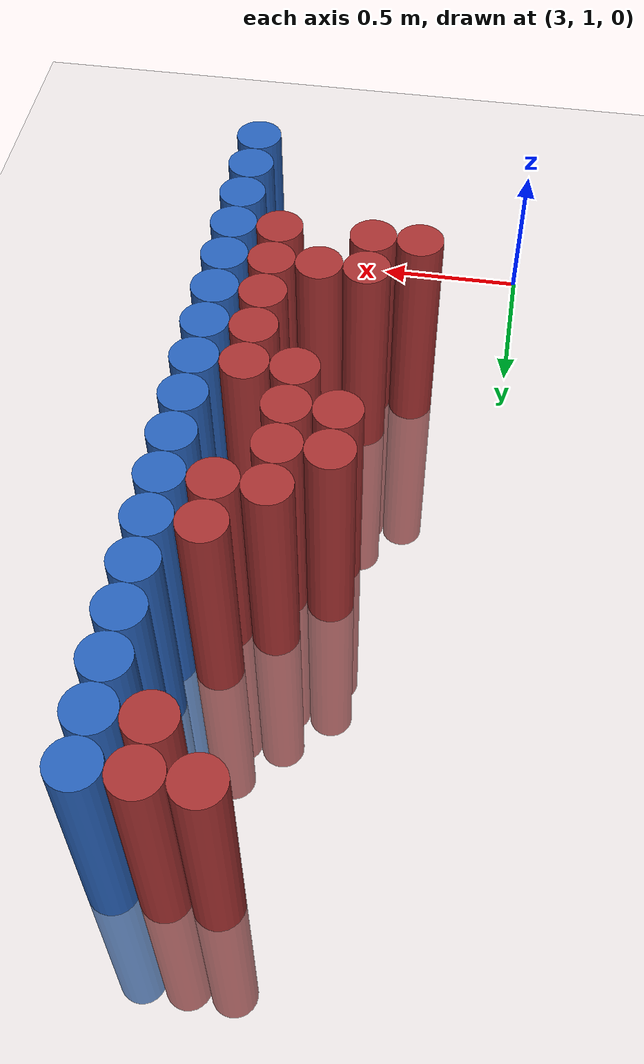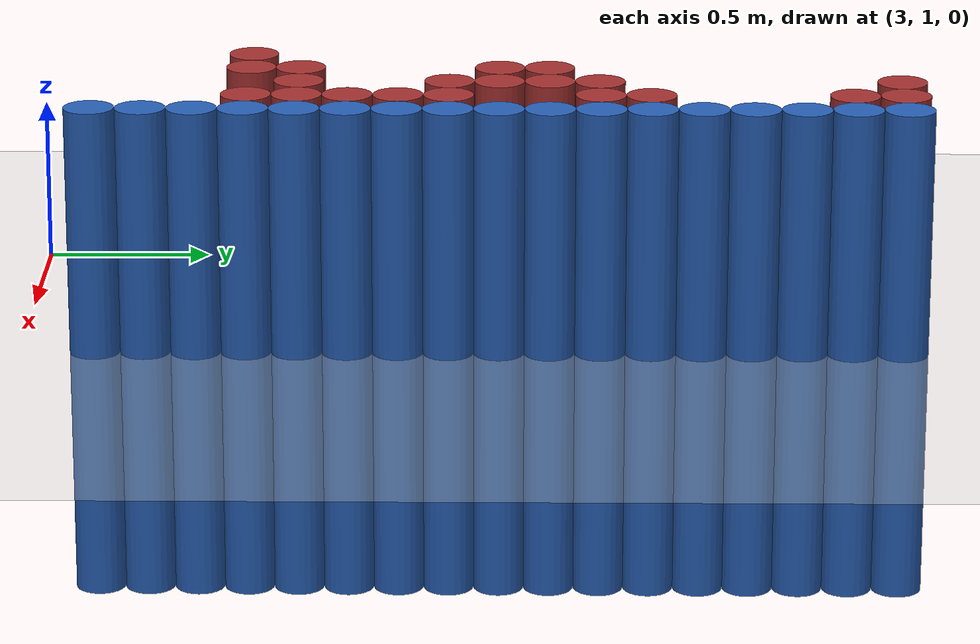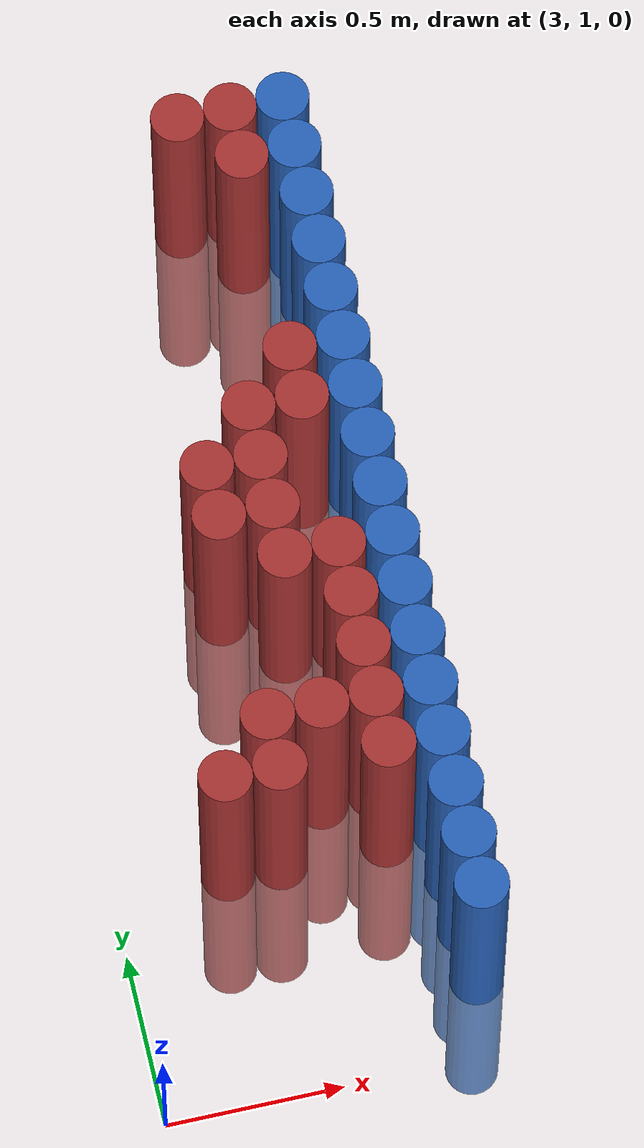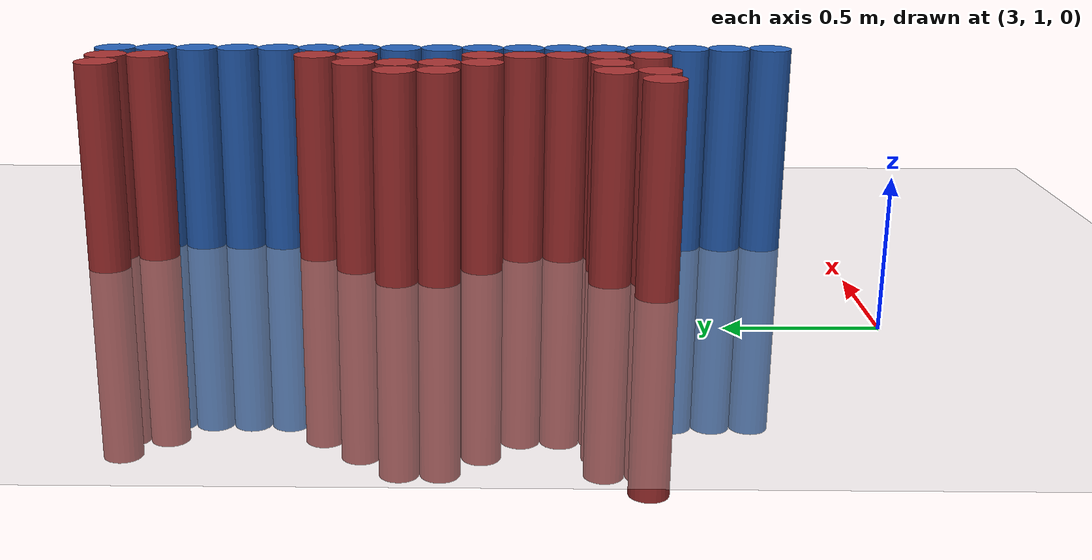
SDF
<sdf version="1.6">
 <world name="default">
  <model name="ground_plane">
   <static>1</static>
   <link name="link">
    <collision name="collision">
     <geometry><plane><normal>0 0 1</normal><size>100 100</size></plane></geometry>
     <surface><friction><ode><mu>100</mu><mu2>50</mu2></ode></friction></surface>
    </collision>
    <visual name="visual">
     <cast_shadows>0</cast_shadows>
     <geometry><plane><normal>0 0 1</normal><size>100 100</size></plane></geometry>
     <material>
      <script><uri>file://media/materials/scripts/gazebo.material</uri><name>Gazebo/Grey</name></script>
     </material>
    </visual>
   </link>
  </model>
  <model name="unit_cylinder_132">
   <static>1</static>
   <pose>3.925000 1.375000 0.000000 0.000000 0.000000 0.000000</pose>
   <link name="link">
    <inertial>
     <mass>1</mass>
     <inertia><ixx>0.145833</ixx><ixy>0</ixy><ixz>0</ixz><iyy>0.145833</iyy><iyz>0</iyz><izz>0.125</izz></inertia>
    </inertial>
    <collision name="collision">
     <geometry><cylinder><radius>0.075000</radius><length>1.5</length></cylinder></geometry>
    </collision>
    <visual name="visual">
     <geometry><cylinder><radius>0.075000</radius><length>1.5</length></cylinder></geometry>
     <material>
      <ambient>0.152000 0.379000 0.720000 1</ambient>
      <diffuse>0.152000 0.379000 0.720000 1</diffuse>
     </material>
     <material>
      <script><name>Gazebo/Grey</name><uri>file://media/materials/scripts/gazebo.material</uri></script>
     </material>
    </visual>
   </link>
  </model>
  <model name="unit_cylinder_134">
   <static>1</static>
   <pose>3.925000 1.525000 0.000000 0.000000 0.000000 0.000000</pose>
   <link name="link">
    <inertial>
     <mass>1</mass>
     <inertia><ixx>0.145833</ixx><ixy>0</ixy><ixz>0</ixz><iyy>0.145833</iyy><iyz>0</iyz><izz>0.125</izz></inertia>
    </inertial>
    <collision name="collision">
     <geometry><cylinder><radius>0.075000</radius><length>1.5</length></cylinder></geometry>
    </collision>
    <visual name="visual">
     <geometry><cylinder><radius>0.075000</radius><length>1.5</length></cylinder></geometry>
     <material>
      <ambient>0.152000 0.379000 0.720000 1</ambient>
      <diffuse>0.152000 0.379000 0.720000 1</diffuse>
     </material>
     <material>
      <script><name>Gazebo/Grey</name><uri>file://media/materials/scripts/gazebo.material</uri></script>
     </material>
    </visual>
   </link>
  </model>
  <model name="unit_cylinder_136">
   <static>1</static>
   <pose>3.925000 1.675000 0.000000 0.000000 0.000000 0.000000</pose>
   <link name="link">
    <inertial>
     <mass>1</mass>
     <inertia><ixx>0.145833</ixx><ixy>0</ixy><ixz>0</ixz><iyy>0.145833</iyy><iyz>0</iyz><izz>0.125</izz></inertia>
    </inertial>
    <collision name="collision">
     <geometry><cylinder><radius>0.075000</radius><length>1.5</length></cylinder></geometry>
    </collision>
    <visual name="visual">
     <geometry><cylinder><radius>0.075000</radius><length>1.5</length></cylinder></geometry>
     <material>
      <ambient>0.152000 0.379000 0.720000 1</ambient>
      <diffuse>0.152000 0.379000 0.720000 1</diffuse>
     </material>
     <material>
      <script><name>Gazebo/Grey</name><uri>file://media/materials/scripts/gazebo.material</uri></script>
     </material>
    </visual>
   </link>
  </model>
  <model name="unit_cylinder_138">
   <static>1</static>
   <pose>3.925000 1.825000 0.000000 0.000000 0.000000 0.000000</pose>
   <link name="link">
    <inertial>
     <mass>1</mass>
     <inertia><ixx>0.145833</ixx><ixy>0</ixy><ixz>0</ixz><iyy>0.145833</iyy><iyz>0</iyz><izz>0.125</izz></inertia>
    </inertial>
    <collision name="collision">
     <geometry><cylinder><radius>0.075000</radius><length>1.5</length></cylinder></geometry>
    </collision>
    <visual name="visual">
     <geometry><cylinder><radius>0.075000</radius><length>1.5</length></cylinder></geometry>
     <material>
      <ambient>0.152000 0.379000 0.720000 1</ambient>
      <diffuse>0.152000 0.379000 0.720000 1</diffuse>
     </material>
     <material>
      <script><name>Gazebo/Grey</name><uri>file://media/materials/scripts/gazebo.material</uri></script>
     </material>
    </visual>
   </link>
  </model>
  <model name="unit_cylinder_140">
   <static>1</static>
   <pose>3.925000 1.975000 0.000000 0.000000 0.000000 0.000000</pose>
   <link name="link">
    <inertial>
     <mass>1</mass>
     <inertia><ixx>0.145833</ixx><ixy>0</ixy><ixz>0</ixz><iyy>0.145833</iyy><iyz>0</iyz><izz>0.125</izz></inertia>
    </inertial>
    <collision name="collision">
     <geometry><cylinder><radius>0.075000</radius><length>1.5</length></cylinder></geometry>
    </collision>
    <visual name="visual">
     <geometry><cylinder><radius>0.075000</radius><length>1.5</length></cylinder></geometry>
     <material>
      <ambient>0.152000 0.379000 0.720000 1</ambient>
      <diffuse>0.152000 0.379000 0.720000 1</diffuse>
     </material>
     <material>
      <script><name>Gazebo/Grey</name><uri>file://media/materials/scripts/gazebo.material</uri></script>
     </material>
    </visual>
   </link>
  </model>
  <model name="unit_cylinder_142">
   <static>1</static>
   <pose>3.925000 2.125000 0.000000 0.000000 0.000000 0.000000</pose>
   <link name="link">
    <inertial>
     <mass>1</mass>
     <inertia><ixx>0.145833</ixx><ixy>0</ixy><ixz>0</ixz><iyy>0.145833</iyy><iyz>0</iyz><izz>0.125</izz></inertia>
    </inertial>
    <collision name="collision">
     <geometry><cylinder><radius>0.075000</radius><length>1.5</length></cylinder></geometry>
    </collision>
    <visual name="visual">
     <geometry><cylinder><radius>0.075000</radius><length>1.5</length></cylinder></geometry>
     <material>
      <ambient>0.152000 0.379000 0.720000 1</ambient>
      <diffuse>0.152000 0.379000 0.720000 1</diffuse>
     </material>
     <material>
      <script><name>Gazebo/Grey</name><uri>file://media/materials/scripts/gazebo.material</uri></script>
     </material>
    </visual>
   </link>
  </model>
  <model name="unit_cylinder_144">
   <static>1</static>
   <pose>3.925000 2.275000 0.000000 0.000000 0.000000 0.000000</pose>
   <link name="link">
    <inertial>
     <mass>1</mass>
     <inertia><ixx>0.145833</ixx><ixy>0</ixy><ixz>0</ixz><iyy>0.145833</iyy><iyz>0</iyz><izz>0.125</izz></inertia>
    </inertial>
    <collision name="collision">
     <geometry><cylinder><radius>0.075000</radius><length>1.5</length></cylinder></geometry>
    </collision>
    <visual name="visual">
     <geometry><cylinder><radius>0.075000</radius><length>1.5</length></cylinder></geometry>
     <material>
      <ambient>0.152000 0.379000 0.720000 1</ambient>
      <diffuse>0.152000 0.379000 0.720000 1</diffuse>
     </material>
     <material>
      <script><name>Gazebo/Grey</name><uri>file://media/materials/scripts/gazebo.material</uri></script>
     </material>
    </visual>
   </link>
  </model>
  <model name="unit_cylinder_146">
   <static>1</static>
   <pose>3.925000 2.425000 0.000000 0.000000 0.000000 0.000000</pose>
   <link name="link">
    <inertial>
     <mass>1</mass>
     <inertia><ixx>0.145833</ixx><ixy>0</ixy><ixz>0</ixz><iyy>0.145833</iyy><iyz>0</iyz><izz>0.125</izz></inertia>
    </inertial>
    <collision name="collision">
     <geometry><cylinder><radius>0.075000</radius><length>1.5</length></cylinder></geometry>
    </collision>
    <visual name="visual">
     <geometry><cylinder><radius>0.075000</radius><length>1.5</length></cylinder></geometry>
     <material>
      <ambient>0.152000 0.379000 0.720000 1</ambient>
      <diffuse>0.152000 0.379000 0.720000 1</diffuse>
     </material>
     <material>
      <script><name>Gazebo/Grey</name><uri>file://media/materials/scripts/gazebo.material</uri></script>
     </material>
    </visual>
   </link>
  </model>
  <model name="unit_cylinder_148">
   <static>1</static>
   <pose>3.925000 2.575000 0.000000 0.000000 0.000000 0.000000</pose>
   <link name="link">
    <inertial>
     <mass>1</mass>
     <inertia><ixx>0.145833</ixx><ixy>0</ixy><ixz>0</ixz><iyy>0.145833</iyy><iyz>0</iyz><izz>0.125</izz></inertia>
    </inertial>
    <collision name="collision">
     <geometry><cylinder><radius>0.075000</radius><length>1.5</length></cylinder></geometry>
    </collision>
    <visual name="visual">
     <geometry><cylinder><radius>0.075000</radius><length>1.5</length></cylinder></geometry>
     <material>
      <ambient>0.152000 0.379000 0.720000 1</ambient>
      <diffuse>0.152000 0.379000 0.720000 1</diffuse>
     </material>
     <material>
      <script><name>Gazebo/Grey</name><uri>file://media/materials/scripts/gazebo.material</uri></script>
     </material>
    </visual>
   </link>
  </model>
  <model name="unit_cylinder_150">
   <static>1</static>
   <pose>3.925000 2.725000 0.000000 0.000000 0.000000 0.000000</pose>
   <link name="link">
    <inertial>
     <mass>1</mass>
     <inertia><ixx>0.145833</ixx><ixy>0</ixy><ixz>0</ixz><iyy>0.145833</iyy><iyz>0</iyz><izz>0.125</izz></inertia>
    </inertial>
    <collision name="collision">
     <geometry><cylinder><radius>0.075000</radius><length>1.5</length></cylinder></geometry>
    </collision>
    <visual name="visual">
     <geometry><cylinder><radius>0.075000</radius><length>1.5</length></cylinder></geometry>
     <material>
      <ambient>0.152000 0.379000 0.720000 1</ambient>
      <diffuse>0.152000 0.379000 0.720000 1</diffuse>
     </material>
     <material>
      <script><name>Gazebo/Grey</name><uri>file://media/materials/scripts/gazebo.material</uri></script>
     </material>
    </visual>
   </link>
  </model>
  <model name="unit_cylinder_152">
   <static>1</static>
   <pose>3.925000 2.875000 0.000000 0.000000 0.000000 0.000000</pose>
   <link name="link">
    <inertial>
     <mass>1</mass>
     <inertia><ixx>0.145833</ixx><ixy>0</ixy><ixz>0</ixz><iyy>0.145833</iyy><iyz>0</iyz><izz>0.125</izz></inertia>
    </inertial>
    <collision name="collision">
     <geometry><cylinder><radius>0.075000</radius><length>1.5</length></cylinder></geometry>
    </collision>
    <visual name="visual">
     <geometry><cylinder><radius>0.075000</radius><length>1.5</length></cylinder></geometry>
     <material>
      <ambient>0.152000 0.379000 0.720000 1</ambient>
      <diffuse>0.152000 0.379000 0.720000 1</diffuse>
     </material>
     <material>
      <script><name>Gazebo/Grey</name><uri>file://media/materials/scripts/gazebo.material</uri></script>
     </material>
    </visual>
   </link>
  </model>
  <model name="unit_cylinder_154">
   <static>1</static>
   <pose>3.925000 3.025000 0.000000 0.000000 0.000000 0.000000</pose>
   <link name="link">
    <inertial>
     <mass>1</mass>
     <inertia><ixx>0.145833</ixx><ixy>0</ixy><ixz>0</ixz><iyy>0.145833</iyy><iyz>0</iyz><izz>0.125</izz></inertia>
    </inertial>
    <collision name="collision">
     <geometry><cylinder><radius>0.075000</radius><length>1.5</length></cylinder></geometry>
    </collision>
    <visual name="visual">
     <geometry><cylinder><radius>0.075000</radius><length>1.5</length></cylinder></geometry>
     <material>
      <ambient>0.152000 0.379000 0.720000 1</ambient>
      <diffuse>0.152000 0.379000 0.720000 1</diffuse>
     </material>
     <material>
      <script><name>Gazebo/Grey</name><uri>file://media/materials/scripts/gazebo.material</uri></script>
     </material>
    </visual>
   </link>
  </model>
  <model name="unit_cylinder_156">
   <static>1</static>
   <pose>3.925000 3.175000 0.000000 0.000000 0.000000 0.000000</pose>
   <link name="link">
    <inertial>
     <mass>1</mass>
     <inertia><ixx>0.145833</ixx><ixy>0</ixy><ixz>0</ixz><iyy>0.145833</iyy><iyz>0</iyz><izz>0.125</izz></inertia>
    </inertial>
    <collision name="collision">
     <geometry><cylinder><radius>0.075000</radius><length>1.5</length></cylinder></geometry>
    </collision>
    <visual name="visual">
     <geometry><cylinder><radius>0.075000</radius><length>1.5</length></cylinder></geometry>
     <material>
      <ambient>0.152000 0.379000 0.720000 1</ambient>
      <diffuse>0.152000 0.379000 0.720000 1</diffuse>
     </material>
     <material>
      <script><name>Gazebo/Grey</name><uri>file://media/materials/scripts/gazebo.material</uri></script>
     </material>
    </visual>
   </link>
  </model>
  <model name="unit_cylinder_158">
   <static>1</static>
   <pose>3.925000 3.325000 0.000000 0.000000 0.000000 0.000000</pose>
   <link name="link">
    <inertial>
     <mass>1</mass>
     <inertia><ixx>0.145833</ixx><ixy>0</ixy><ixz>0</ixz><iyy>0.145833</iyy><iyz>0</iyz><izz>0.125</izz></inertia>
    </inertial>
    <collision name="collision">
     <geometry><cylinder><radius>0.075000</radius><length>1.5</length></cylinder></geometry>
    </collision>
    <visual name="visual">
     <geometry><cylinder><radius>0.075000</radius><length>1.5</length></cylinder></geometry>
     <material>
      <ambient>0.152000 0.379000 0.720000 1</ambient>
      <diffuse>0.152000 0.379000 0.720000 1</diffuse>
     </material>
     <material>
      <script><name>Gazebo/Grey</name><uri>file://media/materials/scripts/gazebo.material</uri></script>
     </material>
    </visual>
   </link>
  </model>
  <model name="unit_cylinder_160">
   <static>1</static>
   <pose>3.925000 3.475000 0.000000 0.000000 0.000000 0.000000</pose>
   <link name="link">
    <inertial>
     <mass>1</mass>
     <inertia><ixx>0.145833</ixx><ixy>0</ixy><ixz>0</ixz><iyy>0.145833</iyy><iyz>0</iyz><izz>0.125</izz></inertia>
    </inertial>
    <collision name="collision">
     <geometry><cylinder><radius>0.075000</radius><length>1.5</length></cylinder></geometry>
    </collision>
    <visual name="visual">
     <geometry><cylinder><radius>0.075000</radius><length>1.5</length></cylinder></geometry>
     <material>
      <ambient>0.152000 0.379000 0.720000 1</ambient>
      <diffuse>0.152000 0.379000 0.720000 1</diffuse>
     </material>
     <material>
      <script><name>Gazebo/Grey</name><uri>file://media/materials/scripts/gazebo.material</uri></script>
     </material>
    </visual>
   </link>
  </model>
  <model name="unit_cylinder_162">
   <static>1</static>
   <pose>3.925000 3.625000 0.000000 0.000000 0.000000 0.000000</pose>
   <link name="link">
    <inertial>
     <mass>1</mass>
     <inertia><ixx>0.145833</ixx><ixy>0</ixy><ixz>0</ixz><iyy>0.145833</iyy><iyz>0</iyz><izz>0.125</izz></inertia>
    </inertial>
    <collision name="collision">
     <geometry><cylinder><radius>0.075000</radius><length>1.5</length></cylinder></geometry>
    </collision>
    <visual name="visual">
     <geometry><cylinder><radius>0.075000</radius><length>1.5</length></cylinder></geometry>
     <material>
      <ambient>0.152000 0.379000 0.720000 1</ambient>
      <diffuse>0.152000 0.379000 0.720000 1</diffuse>
     </material>
     <material>
      <script><name>Gazebo/Grey</name><uri>file://media/materials/scripts/gazebo.material</uri></script>
     </material>
    </visual>
   </link>
  </model>
  <model name="unit_cylinder_428">
   <static>1</static>
   <pose>3.325000 1.675000 0.000000 0.000000 0.000000 0.000000</pose>
   <link name="link">
    <inertial>
     <mass>1</mass>
     <inertia><ixx>0.145833</ixx><ixy>0</ixy><ixz>0</ixz><iyy>0.145833</iyy><iyz>0</iyz><izz>0.125</izz></inertia>
    </inertial>
    <collision name="collision">
     <geometry><cylinder><radius>0.075000</radius><length>1.5</length></cylinder></geometry>
    </collision>
    <visual name="visual">
     <geometry><cylinder><radius>0.075000</radius><length>1.5</length></cylinder></geometry>
     <material>
      <ambient>0.648000 0.192000 0.192000 1</ambient>
      <diffuse>0.648000 0.192000 0.192000 1</diffuse>
     </material>
     <material>
      <script><name>Gazebo/Grey</name><uri>file://media/materials/scripts/gazebo.material</uri></script>
     </material>
    </visual>
   </link>
  </model>
  <model name="unit_cylinder_433">
   <static>1</static>
   <pose>3.475000 1.675000 0.000000 0.000000 0.000000 0.000000</pose>
   <link name="link">
    <inertial>
     <mass>1</mass>
     <inertia><ixx>0.145833</ixx><ixy>0</ixy><ixz>0</ixz><iyy>0.145833</iyy><iyz>0</iyz><izz>0.125</izz></inertia>
    </inertial>
    <collision name="collision">
     <geometry><cylinder><radius>0.075000</radius><length>1.5</length></cylinder></geometry>
    </collision>
    <visual name="visual">
     <geometry><cylinder><radius>0.075000</radius><length>1.5</length></cylinder></geometry>
     <material>
      <ambient>0.648000 0.192000 0.192000 1</ambient>
      <diffuse>0.648000 0.192000 0.192000 1</diffuse>
     </material>
     <material>
      <script><name>Gazebo/Grey</name><uri>file://media/materials/scripts/gazebo.material</uri></script>
     </material>
    </visual>
   </link>
  </model>
  <model name="unit_cylinder_434">
   <static>1</static>
   <pose>3.475000 1.825000 0.000000 0.000000 0.000000 0.000000</pose>
   <link name="link">
    <inertial>
     <mass>1</mass>
     <inertia><ixx>0.145833</ixx><ixy>0</ixy><ixz>0</ixz><iyy>0.145833</iyy><iyz>0</iyz><izz>0.125</izz></inertia>
    </inertial>
    <collision name="collision">
     <geometry><cylinder><radius>0.075000</radius><length>1.5</length></cylinder></geometry>
    </collision>
    <visual name="visual">
     <geometry><cylinder><radius>0.075000</radius><length>1.5</length></cylinder></geometry>
     <material>
      <ambient>0.648000 0.192000 0.192000 1</ambient>
      <diffuse>0.648000 0.192000 0.192000 1</diffuse>
     </material>
     <material>
      <script><name>Gazebo/Grey</name><uri>file://media/materials/scripts/gazebo.material</uri></script>
     </material>
    </visual>
   </link>
  </model>
  <model name="unit_cylinder_435">
   <static>1</static>
   <pose>3.475000 2.425000 0.000000 0.000000 0.000000 0.000000</pose>
   <link name="link">
    <inertial>
     <mass>1</mass>
     <inertia><ixx>0.145833</ixx><ixy>0</ixy><ixz>0</ixz><iyy>0.145833</iyy><iyz>0</iyz><izz>0.125</izz></inertia>
    </inertial>
    <collision name="collision">
     <geometry><cylinder><radius>0.075000</radius><length>1.5</length></cylinder></geometry>
    </collision>
    <visual name="visual">
     <geometry><cylinder><radius>0.075000</radius><length>1.5</length></cylinder></geometry>
     <material>
      <ambient>0.648000 0.192000 0.192000 1</ambient>
      <diffuse>0.648000 0.192000 0.192000 1</diffuse>
     </material>
     <material>
      <script><name>Gazebo/Grey</name><uri>file://media/materials/scripts/gazebo.material</uri></script>
     </material>
    </visual>
   </link>
  </model>
  <model name="unit_cylinder_436">
   <static>1</static>
   <pose>3.475000 2.575000 0.000000 0.000000 0.000000 0.000000</pose>
   <link name="link">
    <inertial>
     <mass>1</mass>
     <inertia><ixx>0.145833</ixx><ixy>0</ixy><ixz>0</ixz><iyy>0.145833</iyy><iyz>0</iyz><izz>0.125</izz></inertia>
    </inertial>
    <collision name="collision">
     <geometry><cylinder><radius>0.075000</radius><length>1.5</length></cylinder></geometry>
    </collision>
    <visual name="visual">
     <geometry><cylinder><radius>0.075000</radius><length>1.5</length></cylinder></geometry>
     <material>
      <ambient>0.648000 0.192000 0.192000 1</ambient>
      <diffuse>0.648000 0.192000 0.192000 1</diffuse>
     </material>
     <material>
      <script><name>Gazebo/Grey</name><uri>file://media/materials/scripts/gazebo.material</uri></script>
     </material>
    </visual>
   </link>
  </model>
  <model name="unit_cylinder_440">
   <static>1</static>
   <pose>3.625000 1.825000 0.000000 0.000000 0.000000 0.000000</pose>
   <link name="link">
    <inertial>
     <mass>1</mass>
     <inertia><ixx>0.145833</ixx><ixy>0</ixy><ixz>0</ixz><iyy>0.145833</iyy><iyz>0</iyz><izz>0.125</izz></inertia>
    </inertial>
    <collision name="collision">
     <geometry><cylinder><radius>0.075000</radius><length>1.5</length></cylinder></geometry>
    </collision>
    <visual name="visual">
     <geometry><cylinder><radius>0.075000</radius><length>1.5</length></cylinder></geometry>
     <material>
      <ambient>0.648000 0.192000 0.192000 1</ambient>
      <diffuse>0.648000 0.192000 0.192000 1</diffuse>
     </material>
     <material>
      <script><name>Gazebo/Grey</name><uri>file://media/materials/scripts/gazebo.material</uri></script>
     </material>
    </visual>
   </link>
  </model>
  <model name="unit_cylinder_441">
   <static>1</static>
   <pose>3.625000 2.275000 0.000000 0.000000 0.000000 0.000000</pose>
   <link name="link">
    <inertial>
     <mass>1</mass>
     <inertia><ixx>0.145833</ixx><ixy>0</ixy><ixz>0</ixz><iyy>0.145833</iyy><iyz>0</iyz><izz>0.125</izz></inertia>
    </inertial>
    <collision name="collision">
     <geometry><cylinder><radius>0.075000</radius><length>1.5</length></cylinder></geometry>
    </collision>
    <visual name="visual">
     <geometry><cylinder><radius>0.075000</radius><length>1.5</length></cylinder></geometry>
     <material>
      <ambient>0.648000 0.192000 0.192000 1</ambient>
      <diffuse>0.648000 0.192000 0.192000 1</diffuse>
     </material>
     <material>
      <script><name>Gazebo/Grey</name><uri>file://media/materials/scripts/gazebo.material</uri></script>
     </material>
    </visual>
   </link>
  </model>
  <model name="unit_cylinder_442">
   <static>1</static>
   <pose>3.625000 2.425000 0.000000 0.000000 0.000000 0.000000</pose>
   <link name="link">
    <inertial>
     <mass>1</mass>
     <inertia><ixx>0.145833</ixx><ixy>0</ixy><ixz>0</ixz><iyy>0.145833</iyy><iyz>0</iyz><izz>0.125</izz></inertia>
    </inertial>
    <collision name="collision">
     <geometry><cylinder><radius>0.075000</radius><length>1.5</length></cylinder></geometry>
    </collision>
    <visual name="visual">
     <geometry><cylinder><radius>0.075000</radius><length>1.5</length></cylinder></geometry>
     <material>
      <ambient>0.648000 0.192000 0.192000 1</ambient>
      <diffuse>0.648000 0.192000 0.192000 1</diffuse>
     </material>
     <material>
      <script><name>Gazebo/Grey</name><uri>file://media/materials/scripts/gazebo.material</uri></script>
     </material>
    </visual>
   </link>
  </model>
  <model name="unit_cylinder_443">
   <static>1</static>
   <pose>3.625000 2.575000 0.000000 0.000000 0.000000 0.000000</pose>
   <link name="link">
    <inertial>
     <mass>1</mass>
     <inertia><ixx>0.145833</ixx><ixy>0</ixy><ixz>0</ixz><iyy>0.145833</iyy><iyz>0</iyz><izz>0.125</izz></inertia>
    </inertial>
    <collision name="collision">
     <geometry><cylinder><radius>0.075000</radius><length>1.5</length></cylinder></geometry>
    </collision>
    <visual name="visual">
     <geometry><cylinder><radius>0.075000</radius><length>1.5</length></cylinder></geometry>
     <material>
      <ambient>0.648000 0.192000 0.192000 1</ambient>
      <diffuse>0.648000 0.192000 0.192000 1</diffuse>
     </material>
     <material>
      <script><name>Gazebo/Grey</name><uri>file://media/materials/scripts/gazebo.material</uri></script>
     </material>
    </visual>
   </link>
  </model>
  <model name="unit_cylinder_444">
   <static>1</static>
   <pose>3.625000 2.725000 0.000000 0.000000 0.000000 0.000000</pose>
   <link name="link">
    <inertial>
     <mass>1</mass>
     <inertia><ixx>0.145833</ixx><ixy>0</ixy><ixz>0</ixz><iyy>0.145833</iyy><iyz>0</iyz><izz>0.125</izz></inertia>
    </inertial>
    <collision name="collision">
     <geometry><cylinder><radius>0.075000</radius><length>1.5</length></cylinder></geometry>
    </collision>
    <visual name="visual">
     <geometry><cylinder><radius>0.075000</radius><length>1.5</length></cylinder></geometry>
     <material>
      <ambient>0.648000 0.192000 0.192000 1</ambient>
      <diffuse>0.648000 0.192000 0.192000 1</diffuse>
     </material>
     <material>
      <script><name>Gazebo/Grey</name><uri>file://media/materials/scripts/gazebo.material</uri></script>
     </material>
    </visual>
   </link>
  </model>
  <model name="unit_cylinder_445">
   <static>1</static>
   <pose>3.625000 3.625000 0.000000 0.000000 0.000000 0.000000</pose>
   <link name="link">
    <inertial>
     <mass>1</mass>
     <inertia><ixx>0.145833</ixx><ixy>0</ixy><ixz>0</ixz><iyy>0.145833</iyy><iyz>0</iyz><izz>0.125</izz></inertia>
    </inertial>
    <collision name="collision">
     <geometry><cylinder><radius>0.075000</radius><length>1.5</length></cylinder></geometry>
    </collision>
    <visual name="visual">
     <geometry><cylinder><radius>0.075000</radius><length>1.5</length></cylinder></geometry>
     <material>
      <ambient>0.648000 0.192000 0.192000 1</ambient>
      <diffuse>0.648000 0.192000 0.192000 1</diffuse>
     </material>
     <material>
      <script><name>Gazebo/Grey</name><uri>file://media/materials/scripts/gazebo.material</uri></script>
     </material>
    </visual>
   </link>
  </model>
  <model name="unit_cylinder_457">
   <static>1</static>
   <pose>3.775000 1.675000 0.000000 0.000000 0.000000 0.000000</pose>
   <link name="link">
    <inertial>
     <mass>1</mass>
     <inertia><ixx>0.145833</ixx><ixy>0</ixy><ixz>0</ixz><iyy>0.145833</iyy><iyz>0</iyz><izz>0.125</izz></inertia>
    </inertial>
    <collision name="collision">
     <geometry><cylinder><radius>0.075000</radius><length>1.5</length></cylinder></geometry>
    </collision>
    <visual name="visual">
     <geometry><cylinder><radius>0.075000</radius><length>1.5</length></cylinder></geometry>
     <material>
      <ambient>0.648000 0.192000 0.192000 1</ambient>
      <diffuse>0.648000 0.192000 0.192000 1</diffuse>
     </material>
     <material>
      <script><name>Gazebo/Grey</name><uri>file://media/materials/scripts/gazebo.material</uri></script>
     </material>
    </visual>
   </link>
  </model>
  <model name="unit_cylinder_458">
   <static>1</static>
   <pose>3.775000 1.825000 0.000000 0.000000 0.000000 0.000000</pose>
   <link name="link">
    <inertial>
     <mass>1</mass>
     <inertia><ixx>0.145833</ixx><ixy>0</ixy><ixz>0</ixz><iyy>0.145833</iyy><iyz>0</iyz><izz>0.125</izz></inertia>
    </inertial>
    <collision name="collision">
     <geometry><cylinder><radius>0.075000</radius><length>1.5</length></cylinder></geometry>
    </collision>
    <visual name="visual">
     <geometry><cylinder><radius>0.075000</radius><length>1.5</length></cylinder></geometry>
     <material>
      <ambient>0.648000 0.192000 0.192000 1</ambient>
      <diffuse>0.648000 0.192000 0.192000 1</diffuse>
     </material>
     <material>
      <script><name>Gazebo/Grey</name><uri>file://media/materials/scripts/gazebo.material</uri></script>
     </material>
    </visual>
   </link>
  </model>
  <model name="unit_cylinder_459">
   <static>1</static>
   <pose>3.775000 1.975000 0.000000 0.000000 0.000000 0.000000</pose>
   <link name="link">
    <inertial>
     <mass>1</mass>
     <inertia><ixx>0.145833</ixx><ixy>0</ixy><ixz>0</ixz><iyy>0.145833</iyy><iyz>0</iyz><izz>0.125</izz></inertia>
    </inertial>
    <collision name="collision">
     <geometry><cylinder><radius>0.075000</radius><length>1.5</length></cylinder></geometry>
    </collision>
    <visual name="visual">
     <geometry><cylinder><radius>0.075000</radius><length>1.5</length></cylinder></geometry>
     <material>
      <ambient>0.648000 0.192000 0.192000 1</ambient>
      <diffuse>0.648000 0.192000 0.192000 1</diffuse>
     </material>
     <material>
      <script><name>Gazebo/Grey</name><uri>file://media/materials/scripts/gazebo.material</uri></script>
     </material>
    </visual>
   </link>
  </model>
  <model name="unit_cylinder_460">
   <static>1</static>
   <pose>3.775000 2.125000 0.000000 0.000000 0.000000 0.000000</pose>
   <link name="link">
    <inertial>
     <mass>1</mass>
     <inertia><ixx>0.145833</ixx><ixy>0</ixy><ixz>0</ixz><iyy>0.145833</iyy><iyz>0</iyz><izz>0.125</izz></inertia>
    </inertial>
    <collision name="collision">
     <geometry><cylinder><radius>0.075000</radius><length>1.5</length></cylinder></geometry>
    </collision>
    <visual name="visual">
     <geometry><cylinder><radius>0.075000</radius><length>1.5</length></cylinder></geometry>
     <material>
      <ambient>0.648000 0.192000 0.192000 1</ambient>
      <diffuse>0.648000 0.192000 0.192000 1</diffuse>
     </material>
     <material>
      <script><name>Gazebo/Grey</name><uri>file://media/materials/scripts/gazebo.material</uri></script>
     </material>
    </visual>
   </link>
  </model>
  <model name="unit_cylinder_461">
   <static>1</static>
   <pose>3.775000 2.275000 0.000000 0.000000 0.000000 0.000000</pose>
   <link name="link">
    <inertial>
     <mass>1</mass>
     <inertia><ixx>0.145833</ixx><ixy>0</ixy><ixz>0</ixz><iyy>0.145833</iyy><iyz>0</iyz><izz>0.125</izz></inertia>
    </inertial>
    <collision name="collision">
     <geometry><cylinder><radius>0.075000</radius><length>1.5</length></cylinder></geometry>
    </collision>
    <visual name="visual">
     <geometry><cylinder><radius>0.075000</radius><length>1.5</length></cylinder></geometry>
     <material>
      <ambient>0.648000 0.192000 0.192000 1</ambient>
      <diffuse>0.648000 0.192000 0.192000 1</diffuse>
     </material>
     <material>
      <script><name>Gazebo/Grey</name><uri>file://media/materials/scripts/gazebo.material</uri></script>
     </material>
    </visual>
   </link>
  </model>
  <model name="unit_cylinder_462">
   <static>1</static>
   <pose>3.775000 2.725000 0.000000 0.000000 0.000000 0.000000</pose>
   <link name="link">
    <inertial>
     <mass>1</mass>
     <inertia><ixx>0.145833</ixx><ixy>0</ixy><ixz>0</ixz><iyy>0.145833</iyy><iyz>0</iyz><izz>0.125</izz></inertia>
    </inertial>
    <collision name="collision">
     <geometry><cylinder><radius>0.075000</radius><length>1.5</length></cylinder></geometry>
    </collision>
    <visual name="visual">
     <geometry><cylinder><radius>0.075000</radius><length>1.5</length></cylinder></geometry>
     <material>
      <ambient>0.648000 0.192000 0.192000 1</ambient>
      <diffuse>0.648000 0.192000 0.192000 1</diffuse>
     </material>
     <material>
      <script><name>Gazebo/Grey</name><uri>file://media/materials/scripts/gazebo.material</uri></script>
     </material>
    </visual>
   </link>
  </model>
  <model name="unit_cylinder_463">
   <static>1</static>
   <pose>3.775000 2.875000 0.000000 0.000000 0.000000 0.000000</pose>
   <link name="link">
    <inertial>
     <mass>1</mass>
     <inertia><ixx>0.145833</ixx><ixy>0</ixy><ixz>0</ixz><iyy>0.145833</iyy><iyz>0</iyz><izz>0.125</izz></inertia>
    </inertial>
    <collision name="collision">
     <geometry><cylinder><radius>0.075000</radius><length>1.5</length></cylinder></geometry>
    </collision>
    <visual name="visual">
     <geometry><cylinder><radius>0.075000</radius><length>1.5</length></cylinder></geometry>
     <material>
      <ambient>0.648000 0.192000 0.192000 1</ambient>
      <diffuse>0.648000 0.192000 0.192000 1</diffuse>
     </material>
     <material>
      <script><name>Gazebo/Grey</name><uri>file://media/materials/scripts/gazebo.material</uri></script>
     </material>
    </visual>
   </link>
  </model>
  <model name="unit_cylinder_464">
   <static>1</static>
   <pose>3.775000 3.475000 0.000000 0.000000 0.000000 0.000000</pose>
   <link name="link">
    <inertial>
     <mass>1</mass>
     <inertia><ixx>0.145833</ixx><ixy>0</ixy><ixz>0</ixz><iyy>0.145833</iyy><iyz>0</iyz><izz>0.125</izz></inertia>
    </inertial>
    <collision name="collision">
     <geometry><cylinder><radius>0.075000</radius><length>1.5</length></cylinder></geometry>
    </collision>
    <visual name="visual">
     <geometry><cylinder><radius>0.075000</radius><length>1.5</length></cylinder></geometry>
     <material>
      <ambient>0.648000 0.192000 0.192000 1</ambient>
      <diffuse>0.648000 0.192000 0.192000 1</diffuse>
     </material>
     <material>
      <script><name>Gazebo/Grey</name><uri>file://media/materials/scripts/gazebo.material</uri></script>
     </material>
    </visual>
   </link>
  </model>
  <model name="unit_cylinder_465">
   <static>1</static>
   <pose>3.775000 3.625000 0.000000 0.000000 0.000000 0.000000</pose>
   <link name="link">
    <inertial>
     <mass>1</mass>
     <inertia><ixx>0.145833</ixx><ixy>0</ixy><ixz>0</ixz><iyy>0.145833</iyy><iyz>0</iyz><izz>0.125</izz></inertia>
    </inertial>
    <collision name="collision">
     <geometry><cylinder><radius>0.075000</radius><length>1.5</length></cylinder></geometry>
    </collision>
    <visual name="visual">
     <geometry><cylinder><radius>0.075000</radius><length>1.5</length></cylinder></geometry>
     <material>
      <ambient>0.648000 0.192000 0.192000 1</ambient>
      <diffuse>0.648000 0.192000 0.192000 1</diffuse>
     </material>
     <material>
      <script><name>Gazebo/Grey</name><uri>file://media/materials/scripts/gazebo.material</uri></script>
     </material>
    </visual>
   </link>
  </model>
  <model name="unit_cylinder_495">
   <static>1</static>
   <pose>3.925000 1.225000 0.000000 0.000000 0.000000 0.000000</pose>
   <link name="link">
    <inertial>
     <mass>1</mass>
     <inertia><ixx>0.145833</ixx><ixy>0</ixy><ixz>0</ixz><iyy>0.145833</iyy><iyz>0</iyz><izz>0.125</izz></inertia>
    </inertial>
    <collision name="collision">
     <geometry><cylinder><radius>0.075000</radius><length>1.5</length></cylinder></geometry>
    </collision>
    <visual name="visual">
     <geometry><cylinder><radius>0.075000</radius><length>1.5</length></cylinder></geometry>
     <material>
      <ambient>0.152000 0.379000 0.720000 1</ambient>
      <diffuse>0.152000 0.379000 0.720000 1</diffuse>
     </material>
     <material>
      <script><name>Gazebo/Grey</name><uri>file://media/materials/scripts/gazebo.material</uri></script>
     </material>
    </visual>
   </link>
  </model>
  <model name="unit_cylinder_496">
   <static>1</static>
   <pose>3.925000 1.375000 0.000000 0.000000 0.000000 0.000000</pose>
   <link name="link">
    <inertial>
     <mass>1</mass>
     <inertia><ixx>0.145833</ixx><ixy>0</ixy><ixz>0</ixz><iyy>0.145833</iyy><iyz>0</iyz><izz>0.125</izz></inertia>
    </inertial>
    <collision name="collision">
     <geometry><cylinder><radius>0.075000</radius><length>1.5</length></cylinder></geometry>
    </collision>
    <visual name="visual">
     <geometry><cylinder><radius>0.075000</radius><length>1.5</length></cylinder></geometry>
     <material>
      <ambient>0.152000 0.379000 0.720000 1</ambient>
      <diffuse>0.152000 0.379000 0.720000 1</diffuse>
     </material>
     <material>
      <script><name>Gazebo/Grey</name><uri>file://media/materials/scripts/gazebo.material</uri></script>
     </material>
    </visual>
   </link>
  </model>
  <model name="unit_cylinder_497">
   <static>1</static>
   <pose>3.925000 1.525000 0.000000 0.000000 0.000000 0.000000</pose>
   <link name="link">
    <inertial>
     <mass>1</mass>
     <inertia><ixx>0.145833</ixx><ixy>0</ixy><ixz>0</ixz><iyy>0.145833</iyy><iyz>0</iyz><izz>0.125</izz></inertia>
    </inertial>
    <collision name="collision">
     <geometry><cylinder><radius>0.075000</radius><length>1.5</length></cylinder></geometry>
    </collision>
    <visual name="visual">
     <geometry><cylinder><radius>0.075000</radius><length>1.5</length></cylinder></geometry>
     <material>
      <ambient>0.152000 0.379000 0.720000 1</ambient>
      <diffuse>0.152000 0.379000 0.720000 1</diffuse>
     </material>
     <material>
      <script><name>Gazebo/Grey</name><uri>file://media/materials/scripts/gazebo.material</uri></script>
     </material>
    </visual>
   </link>
  </model>
  <model name="unit_cylinder_498">
   <static>1</static>
   <pose>3.925000 1.675000 0.000000 0.000000 0.000000 0.000000</pose>
   <link name="link">
    <inertial>
     <mass>1</mass>
     <inertia><ixx>0.145833</ixx><ixy>0</ixy><ixz>0</ixz><iyy>0.145833</iyy><iyz>0</iyz><izz>0.125</izz></inertia>
    </inertial>
    <collision name="collision">
     <geometry><cylinder><radius>0.075000</radius><length>1.5</length></cylinder></geometry>
    </collision>
    <visual name="visual">
     <geometry><cylinder><radius>0.075000</radius><length>1.5</length></cylinder></geometry>
     <material>
      <ambient>0.152000 0.379000 0.720000 1</ambient>
      <diffuse>0.152000 0.379000 0.720000 1</diffuse>
     </material>
     <material>
      <script><name>Gazebo/Grey</name><uri>file://media/materials/scripts/gazebo.material</uri></script>
     </material>
    </visual>
   </link>
  </model>
  <model name="unit_cylinder_499">
   <static>1</static>
   <pose>3.925000 1.825000 0.000000 0.000000 0.000000 0.000000</pose>
   <link name="link">
    <inertial>
     <mass>1</mass>
     <inertia><ixx>0.145833</ixx><ixy>0</ixy><ixz>0</ixz><iyy>0.145833</iyy><iyz>0</iyz><izz>0.125</izz></inertia>
    </inertial>
    <collision name="collision">
     <geometry><cylinder><radius>0.075000</radius><length>1.5</length></cylinder></geometry>
    </collision>
    <visual name="visual">
     <geometry><cylinder><radius>0.075000</radius><length>1.5</length></cylinder></geometry>
     <material>
      <ambient>0.152000 0.379000 0.720000 1</ambient>
      <diffuse>0.152000 0.379000 0.720000 1</diffuse>
     </material>
     <material>
      <script><name>Gazebo/Grey</name><uri>file://media/materials/scripts/gazebo.material</uri></script>
     </material>
    </visual>
   </link>
  </model>
  <model name="unit_cylinder_500">
   <static>1</static>
   <pose>3.925000 1.975000 0.000000 0.000000 0.000000 0.000000</pose>
   <link name="link">
    <inertial>
     <mass>1</mass>
     <inertia><ixx>0.145833</ixx><ixy>0</ixy><ixz>0</ixz><iyy>0.145833</iyy><iyz>0</iyz><izz>0.125</izz></inertia>
    </inertial>
    <collision name="collision">
     <geometry><cylinder><radius>0.075000</radius><length>1.5</length></cylinder></geometry>
    </collision>
    <visual name="visual">
     <geometry><cylinder><radius>0.075000</radius><length>1.5</length></cylinder></geometry>
     <material>
      <ambient>0.152000 0.379000 0.720000 1</ambient>
      <diffuse>0.152000 0.379000 0.720000 1</diffuse>
     </material>
     <material>
      <script><name>Gazebo/Grey</name><uri>file://media/materials/scripts/gazebo.material</uri></script>
     </material>
    </visual>
   </link>
  </model>
  <model name="unit_cylinder_501">
   <static>1</static>
   <pose>3.925000 2.125000 0.000000 0.000000 0.000000 0.000000</pose>
   <link name="link">
    <inertial>
     <mass>1</mass>
     <inertia><ixx>0.145833</ixx><ixy>0</ixy><ixz>0</ixz><iyy>0.145833</iyy><iyz>0</iyz><izz>0.125</izz></inertia>
    </inertial>
    <collision name="collision">
     <geometry><cylinder><radius>0.075000</radius><length>1.5</length></cylinder></geometry>
    </collision>
    <visual name="visual">
     <geometry><cylinder><radius>0.075000</radius><length>1.5</length></cylinder></geometry>
     <material>
      <ambient>0.152000 0.379000 0.720000 1</ambient>
      <diffuse>0.152000 0.379000 0.720000 1</diffuse>
     </material>
     <material>
      <script><name>Gazebo/Grey</name><uri>file://media/materials/scripts/gazebo.material</uri></script>
     </material>
    </visual>
   </link>
  </model>
  <model name="unit_cylinder_502">
   <static>1</static>
   <pose>3.925000 2.275000 0.000000 0.000000 0.000000 0.000000</pose>
   <link name="link">
    <inertial>
     <mass>1</mass>
     <inertia><ixx>0.145833</ixx><ixy>0</ixy><ixz>0</ixz><iyy>0.145833</iyy><iyz>0</iyz><izz>0.125</izz></inertia>
    </inertial>
    <collision name="collision">
     <geometry><cylinder><radius>0.075000</radius><length>1.5</length></cylinder></geometry>
    </collision>
    <visual name="visual">
     <geometry><cylinder><radius>0.075000</radius><length>1.5</length></cylinder></geometry>
     <material>
      <ambient>0.152000 0.379000 0.720000 1</ambient>
      <diffuse>0.152000 0.379000 0.720000 1</diffuse>
     </material>
     <material>
      <script><name>Gazebo/Grey</name><uri>file://media/materials/scripts/gazebo.material</uri></script>
     </material>
    </visual>
   </link>
  </model>
  <model name="unit_cylinder_503">
   <static>1</static>
   <pose>3.925000 2.425000 0.000000 0.000000 0.000000 0.000000</pose>
   <link name="link">
    <inertial>
     <mass>1</mass>
     <inertia><ixx>0.145833</ixx><ixy>0</ixy><ixz>0</ixz><iyy>0.145833</iyy><iyz>0</iyz><izz>0.125</izz></inertia>
    </inertial>
    <collision name="collision">
     <geometry><cylinder><radius>0.075000</radius><length>1.5</length></cylinder></geometry>
    </collision>
    <visual name="visual">
     <geometry><cylinder><radius>0.075000</radius><length>1.5</length></cylinder></geometry>
     <material>
      <ambient>0.152000 0.379000 0.720000 1</ambient>
      <diffuse>0.152000 0.379000 0.720000 1</diffuse>
     </material>
     <material>
      <script><name>Gazebo/Grey</name><uri>file://media/materials/scripts/gazebo.material</uri></script>
     </material>
    </visual>
   </link>
  </model>
  <model name="unit_cylinder_504">
   <static>1</static>
   <pose>3.925000 2.575000 0.000000 0.000000 0.000000 0.000000</pose>
   <link name="link">
    <inertial>
     <mass>1</mass>
     <inertia><ixx>0.145833</ixx><ixy>0</ixy><ixz>0</ixz><iyy>0.145833</iyy><iyz>0</iyz><izz>0.125</izz></inertia>
    </inertial>
    <collision name="collision">
     <geometry><cylinder><radius>0.075000</radius><length>1.5</length></cylinder></geometry>
    </collision>
    <visual name="visual">
     <geometry><cylinder><radius>0.075000</radius><length>1.5</length></cylinder></geometry>
     <material>
      <ambient>0.152000 0.379000 0.720000 1</ambient>
      <diffuse>0.152000 0.379000 0.720000 1</diffuse>
     </material>
     <material>
      <script><name>Gazebo/Grey</name><uri>file://media/materials/scripts/gazebo.material</uri></script>
     </material>
    </visual>
   </link>
  </model>
  <model name="unit_cylinder_505">
   <static>1</static>
   <pose>3.925000 2.725000 0.000000 0.000000 0.000000 0.000000</pose>
   <link name="link">
    <inertial>
     <mass>1</mass>
     <inertia><ixx>0.145833</ixx><ixy>0</ixy><ixz>0</ixz><iyy>0.145833</iyy><iyz>0</iyz><izz>0.125</izz></inertia>
    </inertial>
    <collision name="collision">
     <geometry><cylinder><radius>0.075000</radius><length>1.5</length></cylinder></geometry>
    </collision>
    <visual name="visual">
     <geometry><cylinder><radius>0.075000</radius><length>1.5</length></cylinder></geometry>
     <material>
      <ambient>0.152000 0.379000 0.720000 1</ambient>
      <diffuse>0.152000 0.379000 0.720000 1</diffuse>
     </material>
     <material>
      <script><name>Gazebo/Grey</name><uri>file://media/materials/scripts/gazebo.material</uri></script>
     </material>
    </visual>
   </link>
  </model>
  <model name="unit_cylinder_506">
   <static>1</static>
   <pose>3.925000 2.875000 0.000000 0.000000 0.000000 0.000000</pose>
   <link name="link">
    <inertial>
     <mass>1</mass>
     <inertia><ixx>0.145833</ixx><ixy>0</ixy><ixz>0</ixz><iyy>0.145833</iyy><iyz>0</iyz><izz>0.125</izz></inertia>
    </inertial>
    <collision name="collision">
     <geometry><cylinder><radius>0.075000</radius><length>1.5</length></cylinder></geometry>
    </collision>
    <visual name="visual">
     <geometry><cylinder><radius>0.075000</radius><length>1.5</length></cylinder></geometry>
     <material>
      <ambient>0.152000 0.379000 0.720000 1</ambient>
      <diffuse>0.152000 0.379000 0.720000 1</diffuse>
     </material>
     <material>
      <script><name>Gazebo/Grey</name><uri>file://media/materials/scripts/gazebo.material</uri></script>
     </material>
    </visual>
   </link>
  </model>
  <model name="unit_cylinder_507">
   <static>1</static>
   <pose>3.925000 3.025000 0.000000 0.000000 0.000000 0.000000</pose>
   <link name="link">
    <inertial>
     <mass>1</mass>
     <inertia><ixx>0.145833</ixx><ixy>0</ixy><ixz>0</ixz><iyy>0.145833</iyy><iyz>0</iyz><izz>0.125</izz></inertia>
    </inertial>
    <collision name="collision">
     <geometry><cylinder><radius>0.075000</radius><length>1.5</length></cylinder></geometry>
    </collision>
    <visual name="visual">
     <geometry><cylinder><radius>0.075000</radius><length>1.5</length></cylinder></geometry>
     <material>
      <ambient>0.152000 0.379000 0.720000 1</ambient>
      <diffuse>0.152000 0.379000 0.720000 1</diffuse>
     </material>
     <material>
      <script><name>Gazebo/Grey</name><uri>file://media/materials/scripts/gazebo.material</uri></script>
     </material>
    </visual>
   </link>
  </model>
  <model name="unit_cylinder_508">
   <static>1</static>
   <pose>3.925000 3.175000 0.000000 0.000000 0.000000 0.000000</pose>
   <link name="link">
    <inertial>
     <mass>1</mass>
     <inertia><ixx>0.145833</ixx><ixy>0</ixy><ixz>0</ixz><iyy>0.145833</iyy><iyz>0</iyz><izz>0.125</izz></inertia>
    </inertial>
    <collision name="collision">
     <geometry><cylinder><radius>0.075000</radius><length>1.5</length></cylinder></geometry>
    </collision>
    <visual name="visual">
     <geometry><cylinder><radius>0.075000</radius><length>1.5</length></cylinder></geometry>
     <material>
      <ambient>0.152000 0.379000 0.720000 1</ambient>
      <diffuse>0.152000 0.379000 0.720000 1</diffuse>
     </material>
     <material>
      <script><name>Gazebo/Grey</name><uri>file://media/materials/scripts/gazebo.material</uri></script>
     </material>
    </visual>
   </link>
  </model>
  <model name="unit_cylinder_509">
   <static>1</static>
   <pose>3.925000 3.325000 0.000000 0.000000 0.000000 0.000000</pose>
   <link name="link">
    <inertial>
     <mass>1</mass>
     <inertia><ixx>0.145833</ixx><ixy>0</ixy><ixz>0</ixz><iyy>0.145833</iyy><iyz>0</iyz><izz>0.125</izz></inertia>
    </inertial>
    <collision name="collision">
     <geometry><cylinder><radius>0.075000</radius><length>1.5</length></cylinder></geometry>
    </collision>
    <visual name="visual">
     <geometry><cylinder><radius>0.075000</radius><length>1.5</length></cylinder></geometry>
     <material>
      <ambient>0.152000 0.379000 0.720000 1</ambient>
      <diffuse>0.152000 0.379000 0.720000 1</diffuse>
     </material>
     <material>
      <script><name>Gazebo/Grey</name><uri>file://media/materials/scripts/gazebo.material</uri></script>
     </material>
    </visual>
   </link>
  </model>
  <model name="unit_cylinder_510">
   <static>1</static>
   <pose>3.925000 3.475000 0.000000 0.000000 0.000000 0.000000</pose>
   <link name="link">
    <inertial>
     <mass>1</mass>
     <inertia><ixx>0.145833</ixx><ixy>0</ixy><ixz>0</ixz><iyy>0.145833</iyy><iyz>0</iyz><izz>0.125</izz></inertia>
    </inertial>
    <collision name="collision">
     <geometry><cylinder><radius>0.075000</radius><length>1.5</length></cylinder></geometry>
    </collision>
    <visual name="visual">
     <geometry><cylinder><radius>0.075000</radius><length>1.5</length></cylinder></geometry>
     <material>
      <ambient>0.152000 0.379000 0.720000 1</ambient>
      <diffuse>0.152000 0.379000 0.720000 1</diffuse>
     </material>
     <material>
      <script><name>Gazebo/Grey</name><uri>file://media/materials/scripts/gazebo.material</uri></script>
     </material>
    </visual>
   </link>
  </model>
 </world>
</sdf>
